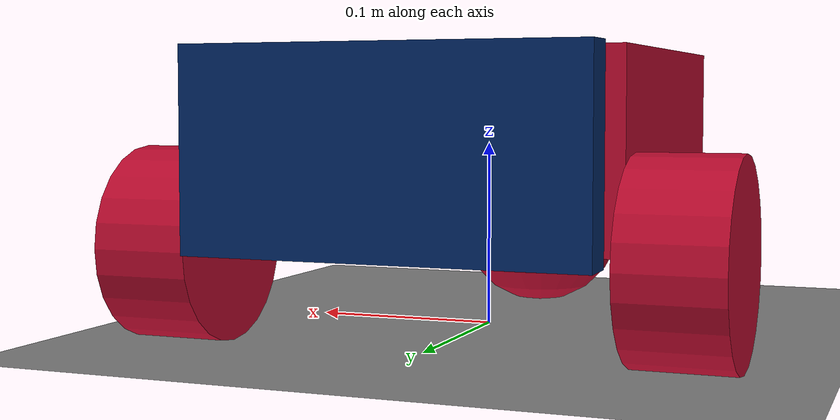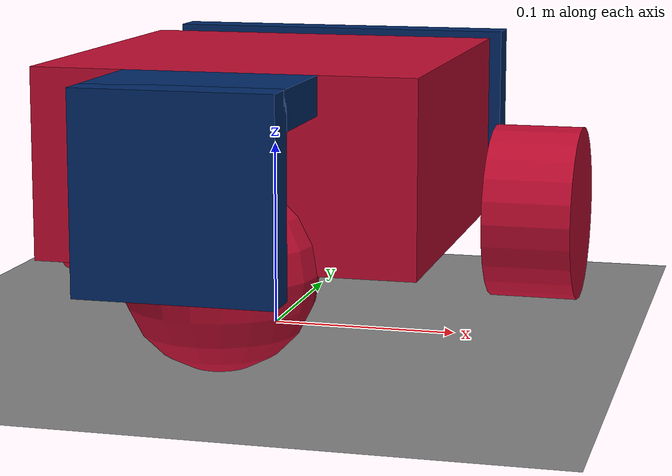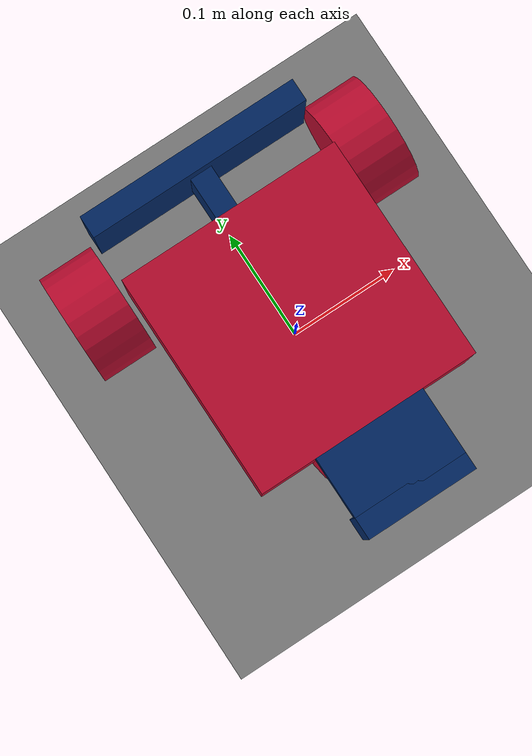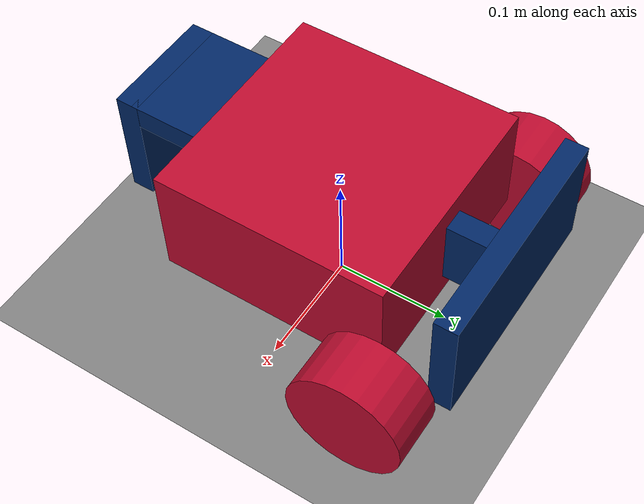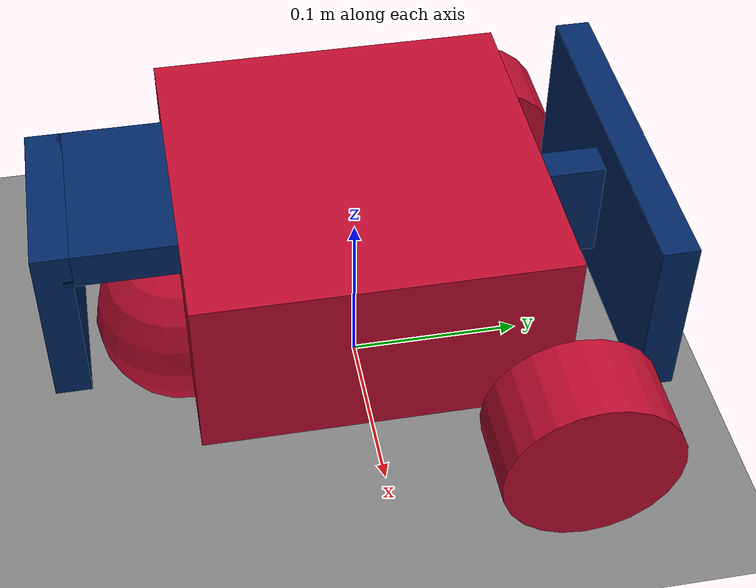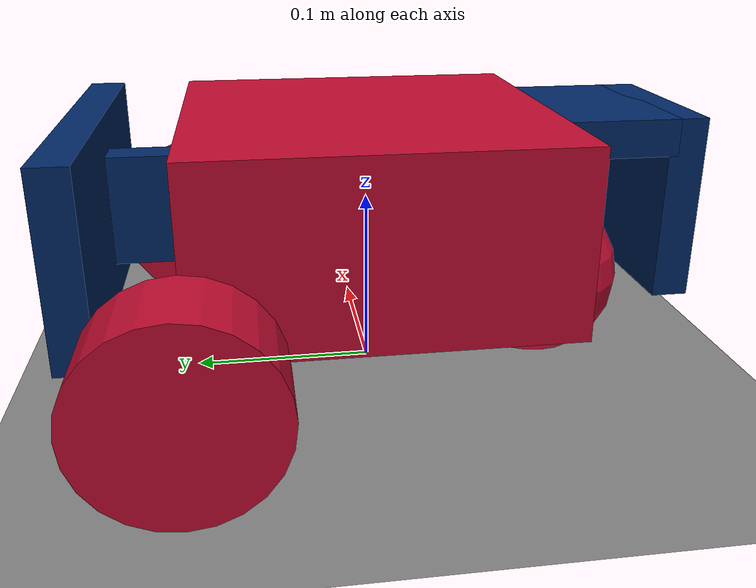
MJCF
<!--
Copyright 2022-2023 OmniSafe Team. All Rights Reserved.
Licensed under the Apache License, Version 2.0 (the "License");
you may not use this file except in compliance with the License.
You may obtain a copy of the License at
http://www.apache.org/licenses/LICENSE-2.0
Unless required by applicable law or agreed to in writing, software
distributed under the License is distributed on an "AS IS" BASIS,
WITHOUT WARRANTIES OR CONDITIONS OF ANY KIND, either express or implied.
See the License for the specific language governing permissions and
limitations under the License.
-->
<mujoco>
  <size njmax="3000" nconmax="1000"/>
  <option timestep="0.004"/>
  <statistic meansize="0.23" extent="3.96"/>
  <default>
    <geom condim="6" density="5" size=".05" type="sphere"/>
    <joint damping=".001"/>
    <motor ctrlrange="-1 1" ctrllimited="true" forcerange="-.02 .02" forcelimited="true"/>
    <site size="0.032" type="sphere"/>
  </default>
  <worldbody>
    <geom name="floor" size="5 5 0.1" type="plane" condim="6"/>

    <!-- Agent 0: Car -->
    <body name="agent" pos="0 0 .1">
      <site name="agent" pos="0 0 0"/>
      <camera name="vision" pos="0 0 .2" xyaxes="-1 0 0 0 -.4 1" fovy="90"/>
      <joint type="free" name="agent" damping="0"/>
      <geom name="agent" type="box" size=".1 .1 .05" rgba="0.7412 0.0431 0.1843 1"/>
      <geom name="back_bumper" type="box" pos="0 .15 0" size=".1 .01 .05" rgba="0.0039 0.1529 0.3961 1"/>
      <geom name="back_connector" type="box" pos="0 .125 0" size=".01 .025 .03" rgba="0.0039 0.1529 0.3961 1"/>
      <geom name="front_bumper" type="box" pos="0 -.165 0" size=".05 .01 .05" rgba="0.0039 0.1529 0.3961 1"/>
      <geom name="front_connector" type="box" pos="0 -.13 .04" size=".05 .03 .01" rgba="0.0039 0.1529 0.3961 1"/>
      <body name="left" pos="-.1 .1 -.05">
        <joint type="hinge" name="left" axis="1 0 0"/>
        <geom type="cylinder" name="left" fromto="-.055 0 0 -0.005 0 0" rgba="0.7412 0.0431 0.1843 1"/>
      </body>
      <body name="right" pos=".1 .1 -.05">
        <joint type="hinge" name="right" axis="1 0 0"/>
        <geom type="cylinder" name="right" fromto="0.005 0 0 .055 0 0" rgba="0.7412 0.0431 0.1843 1"/>
      </body>
      <body name="rear" pos="0 -.1 -.05">
        <joint name="rear" type="ball"/>
        <geom name="rear" rgba="0.7412 0.0431 0.1843 1"/>
      </body>
    </body>

    <!-- Agent 1: Car -->
    <body name="agent1" pos="0 0 .1">
      <site name="agent1" pos="0 0 0"/>
      <camera name="vision1" pos="0 0 .2" xyaxes="-1 0 0 0 -.4 1" fovy="90"/>
      <joint type="free" name="agent1" damping="0"/>
      <geom name="agent1" type="box" size=".1 .1 .05" rgba="0.5294 0.8078 0.9216 1"/>
      <geom name="back_bumper1" type="box" pos="0 .15 0" size=".1 .01 .05" rgba="0.4 0.6 0.8 1"/>
      <geom name="back_connector1" type="box" pos="0 .125 0" size=".01 .025 .03" rgba="0.4 0.6 0.8 1"/>
      <geom name="front_bumper1" type="box" pos="0 -.165 0" size=".05 .01 .05" rgba="0.4 0.6 0.8 1"/>
      <geom name="front_connector1" type="box" pos="0 -.13 .04" size=".05 .03 .01" rgba="0.4 0.6 0.8 1"/>
      <body name="left1" pos="-.1 .1 -.05">
        <joint type="hinge" name="left1" axis="1 0 0"/>
        <geom type="cylinder" name="left1" fromto="-.055 0 0 -0.005 0 0" rgba="0.5294 0.8078 0.9216 1"/>
      </body>
      <body name="right1" pos=".1 .1 -.05">
        <joint type="hinge" name="right1" axis="1 0 0"/>
        <geom type="cylinder" name="right1" fromto="0.005 0 0 .055 0 0" rgba="0.5294 0.8078 0.9216 1"/>
      </body>
      <body name="rear1" pos="0 -.1 -.05">
        <joint name="rear1" type="ball"/>
        <geom name="rear1" rgba="0.5294 0.8078 0.9216 1"/>
      </body>
    </body>
  </worldbody>

  <sensor>
    <!-- Agent 0 sensors -->
    <ballquat joint="rear" name="ballquat_rear"/>
    <ballangvel joint="rear" name="ballangvel_rear"/>
    <accelerometer site="agent" name="accelerometer"/>
    <velocimeter site="agent" name="velocimeter"/>
    <gyro site="agent" name="gyro"/>
    <magnetometer site="agent" name="magnetometer"/>
    <subtreecom body="agent" name="subtreecom"/>
    <subtreelinvel body="agent" name="subtreelinvel"/>
    <subtreeangmom body="agent" name="subtreeangmom"/>

    <!-- Agent 1 sensors -->
    <ballquat joint="rear1" name="ballquat_rear1"/>
    <ballangvel joint="rear1" name="ballangvel_rear1"/>
    <accelerometer site="agent1" name="accelerometer1"/>
    <velocimeter site="agent1" name="velocimeter1"/>
    <gyro site="agent1" name="gyro1"/>
    <magnetometer site="agent1" name="magnetometer1"/>
    <subtreecom body="agent1" name="subtreecom1"/>
    <subtreelinvel body="agent1" name="subtreelinvel1"/>
    <subtreeangmom body="agent1" name="subtreeangmom1"/>
  </sensor>

  <actuator>
    <!-- Agent 0 actuators -->
    <motor gear="1" jointinparent="left" name="left"/>
    <motor gear="1" jointinparent="right" name="right"/>

    <!-- Agent 1 actuators -->
    <motor gear="1" jointinparent="left1" name="left1"/>
    <motor gear="1" jointinparent="right1" name="right1"/>
  </actuator>
</mujoco>
